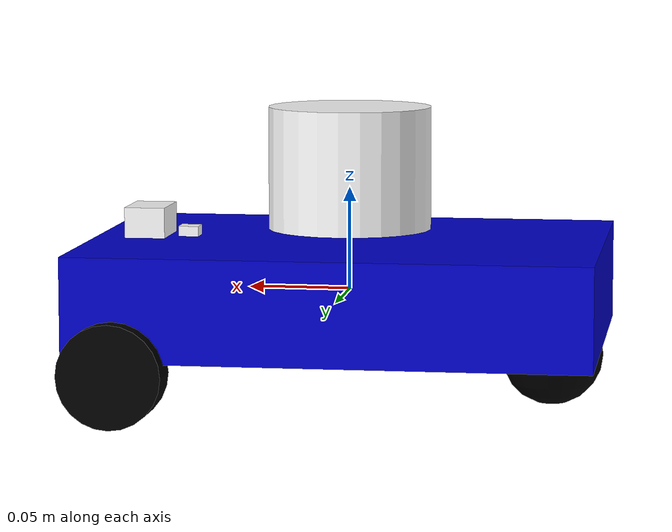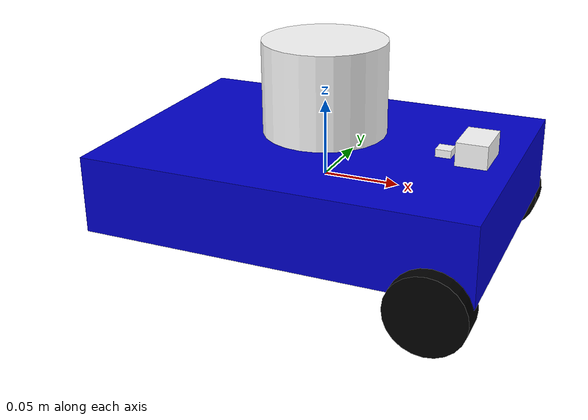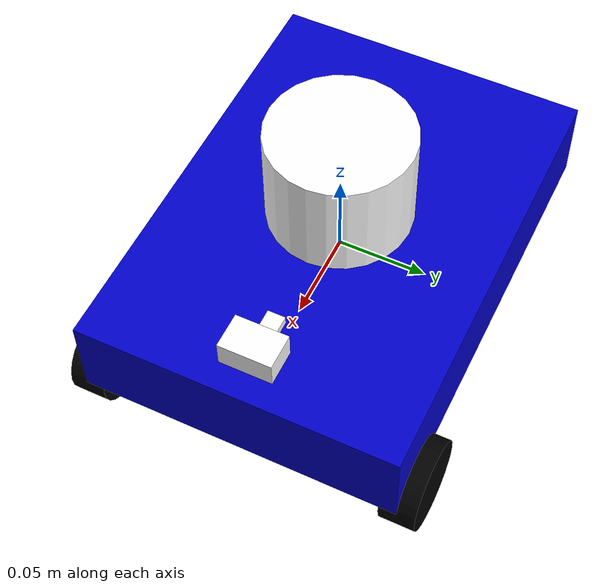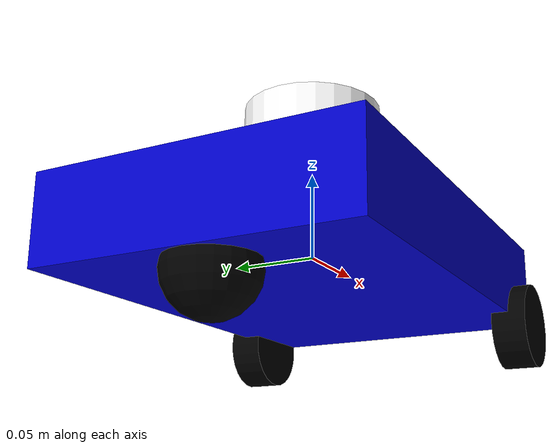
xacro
<?xml version="1.0"?>
<robot name="mybot" xmlns:xacro="http://ros.org/wiki/xacro">

  <xacro:include filename="$(find house)/urdf/mybot.gazebo.xacro" />

  <link name="base_footprint"/>

  <joint name="base_joint" type="fixed">
    <parent link="base_footprint"/>
    <child link="base_link"/>
    <origin rpy="0 0 0" xyz="0 0 0"/>
  </joint>

  <link name="base_link">
    <inertial>
     <origin xyz="0 0 0" rpy="0 0 0"/>
     <mass value="1.0"/>
     <inertia ixx="0.002"  ixy="0"  ixz="0" iyy="0.003" iyz="0" izz="0.005" />
    </inertial>

    <visual>
      <geometry>
        <box size="0.25 0.18 0.05"/>
      </geometry>
      <origin rpy="0 0 0" xyz="0 0 0"/>
      <material name="blue">
          <color rgba="0 0 0.8 1"/>
      </material>
    </visual>

   <collision>
     <origin xyz="0 0 0" rpy="0 0 0"/>
     <geometry>
       <box size="0.25 0.16 0.05"/>
     </geometry>
   </collision>

  </link>

  <link name="right_wheel_link">
    <inertial>
     <origin xyz="0 0 0" rpy="0 0 0"/>
     <mass value="0.1"/>
     <inertia ixx="0.0001"  ixy="0"  ixz="0" iyy="0.0001" iyz="0" izz="0.0001" />
    </inertial>

    <visual>
      <geometry>
        <cylinder length="0.02" radius="0.025"/>
      </geometry>
      <material name="black">
        <color rgba="0 0 0 1"/>
      </material>
    </visual>

    <collision>
     <origin xyz="0 0 0" rpy="0 0 0"/>
     <geometry>
       <cylinder length="0.02" radius="0.025"/>
     </geometry>
    </collision>
  </link>

  <joint name="right_wheel_joint" type="continuous">
    <axis xyz="0 0 -1"/>
    <parent link="base_link"/>
    <child link="right_wheel_link"/>
    <origin rpy="1.5707 0 0" xyz=" 0.1 -0.09 -0.03"/>
  </joint>

  <link name="left_wheel_link">
    <inertial>
     <origin xyz="0 0 0" rpy="0 0 0"/>
     <mass value="0.1"/>
     <inertia ixx="0.0001"  ixy="0"  ixz="0" iyy="0.0001" iyz="0" izz="0.0001" />
    </inertial>

    <visual>
      <geometry>
        <cylinder length="0.02" radius="0.025"/>
      </geometry>
      <material name="black">
        <color rgba="0 0 0 1"/>
      </material>
    </visual>

    <collision>
     <origin xyz="0 0 0" rpy="0 0 0"/>
     <geometry>
       <cylinder length="0.02" radius="0.025"/>
     </geometry>
    </collision>
  </link>

  <joint name="left_wheel_joint" type="continuous">
    <axis xyz="0 0 -1"/>
    <parent link="base_link"/>
    <child link="left_wheel_link"/>
    <origin rpy="1.5707 0 0" xyz="0.1 0.09 -0.03"/>
  </joint>

  <link name="ball_wheel_link">
    <inertial>
     <origin xyz="0 0 0" rpy="0 0 0"/>
     <mass value="0.1"/>
     <inertia ixx="0.0001"  ixy="0"  ixz="0" iyy="0.0001" iyz="0" izz="0.0001" />
    </inertial>

    <visual>
      <geometry>
        <sphere radius="0.025"/>
      </geometry>
      <material name="black">
        <color rgba="0 0 0 1"/>
      </material>
    </visual>

    <collision>
     <origin xyz="0 0 0" rpy="0 0 0"/>
     <geometry>
       <sphere radius="0.025"/>
     </geometry>
    </collision>
  </link>

  <joint name="ball_wheel_joint" type="continuous">
    <axis xyz="0 1 -1"/>
    <parent link="base_link"/>
    <child link="ball_wheel_link"/>
    <origin rpy="0 0 0" xyz="-0.10 0 -0.03"/>
  </joint>
  <!-- imu sensor -->
  <link name="imu">
    <visual>
      <geometry>
        <box size="0.01 0.01 0.01"/>
      </geometry>
      <material name="white">
          <color rgba="1 1 1 1"/>
      </material>
    </visual>
  </link>

  <joint name="imu_joint" type="fixed">
    <parent link="base_link"/>
    <child link="imu"/>
    <origin xyz="0.08 0 0.025"/>
  </joint>

  <!-- camera -->
  <link name="base_camera_link">
    <visual>
      <geometry>
        <box size="0.02 0.03 0.03"/>
      </geometry>
      <material name="white">
          <color rgba="1 1 1 1"/>
      </material>
    </visual>
  </link>

  <joint name="camera_joint" type="fixed">
    <parent link="base_link"/>
    <child link="base_camera_link"/>
    <origin xyz="0.1 0 0.025"/>
  </joint>
  <!-- laser lidar -->
  <link name="base_laser_link">
    <visual>
      <geometry>
        <cylinder length="0.06" radius="0.04"/>
      </geometry>
      <material name="white">
          <color rgba="1 1 1 1"/>
      </material>
    </visual>
  </link>

  <joint name="laser_joint" type="fixed">
    <parent link="base_link"/>
    <child link="base_laser_link"/>
    <origin xyz="0 0.0 0.06"/>
  </joint>

</robot>
